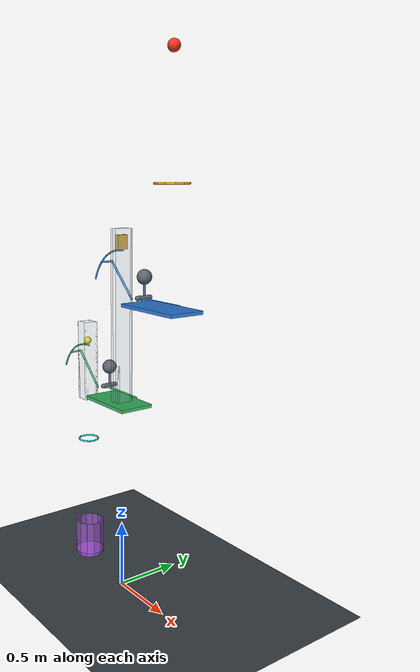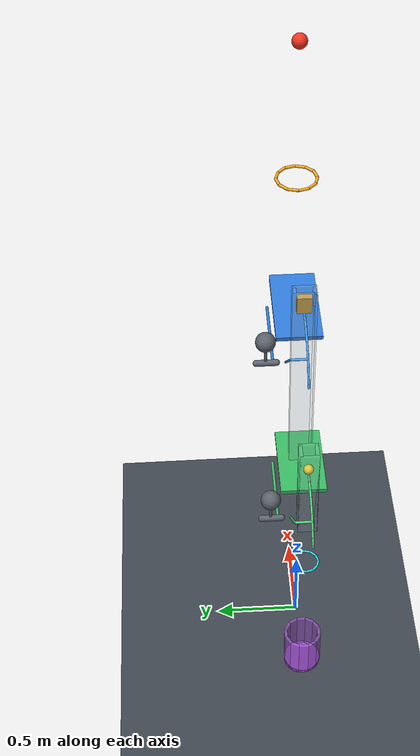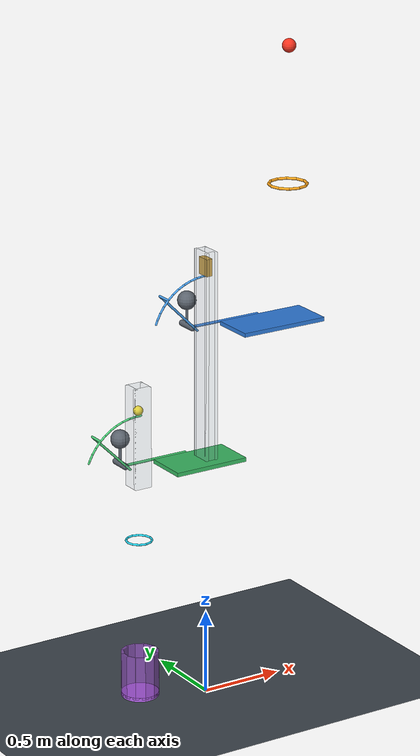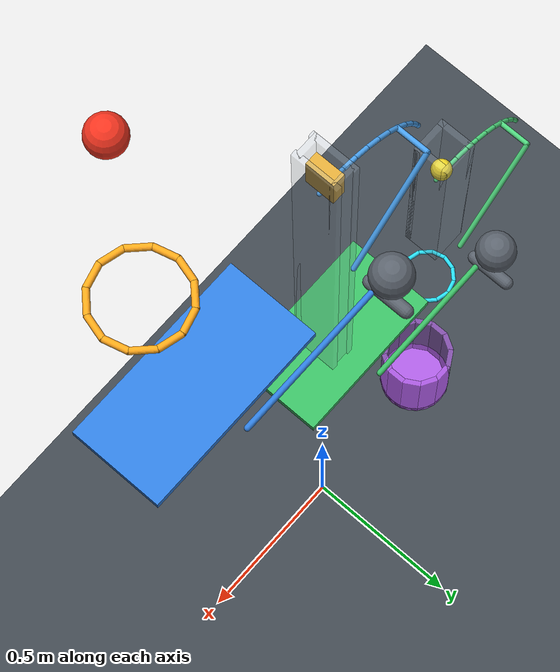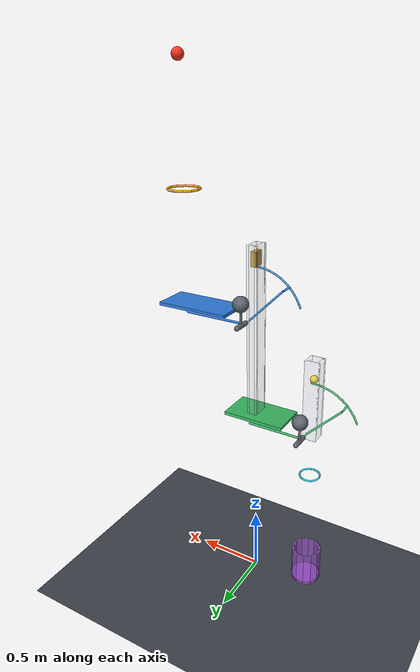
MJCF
<mujoco model="two_hoop_cam_cascade">
  <compiler angle="degree" autolimits="true"/>
  <option timestep="0.002" gravity="0 0 -9.81" integrator="implicitfast" solver="Newton" iterations="100" tolerance="1e-10"/>
  <size njmax="2000" nconmax="400"/>
  <visual>
    <global azimuth="135" elevation="-18"/>
    <headlight ambient="0.4 0.4 0.4" diffuse="0.7 0.7 0.7" specular="0.2 0.2 0.2"/>
  </visual>

  <worldbody>
    <light name="overhead" pos="0 -2 5" dir="0 0 -1"/>
    <camera name="overview" pos="4 -7 4" xyaxes="0.868 0.496 0 -0.168 0.294 0.941"/>
    <geom name="floor" type="plane" size="5 5 0.1" contype="2" conaffinity="1" friction="0.8 0.01 0.001" rgba="0.24 0.27 0.30 1"/>

    <body name="ball1" pos="0.55 0 3.8">
      <freejoint name="ball1_free"/>
      <geom name="ball1_sphere" type="sphere" size="0.04" mass="0.075" contype="1" conaffinity="2" friction="0.35 0.005 0.0001" solref="0.01 1" solimp="0.95 0.99 0.001" rgba="0.95 0.20 0.12 1"/>
    </body>

    <body name="hoop1" pos="0.55 0 3.0">
      <geom name="hoop1_01" type="capsule" fromto="0.110000 0 0 0.095263 0.055000 0" size="0.008" contype="2" conaffinity="1" rgba="1 0.65 0.10 1"/>
      <geom name="hoop1_02" type="capsule" fromto="0.095263 0.055000 0 0.055000 0.095263 0" size="0.008" contype="2" conaffinity="1" rgba="1 0.65 0.10 1"/>
      <geom name="hoop1_03" type="capsule" fromto="0.055000 0.095263 0 0 0.110000 0" size="0.008" contype="2" conaffinity="1" rgba="1 0.65 0.10 1"/>
      <geom name="hoop1_04" type="capsule" fromto="0 0.110000 0 -0.055000 0.095263 0" size="0.008" contype="2" conaffinity="1" rgba="1 0.65 0.10 1"/>
      <geom name="hoop1_05" type="capsule" fromto="-0.055000 0.095263 0 -0.095263 0.055000 0" size="0.008" contype="2" conaffinity="1" rgba="1 0.65 0.10 1"/>
      <geom name="hoop1_06" type="capsule" fromto="-0.095263 0.055000 0 -0.110000 0 0" size="0.008" contype="2" conaffinity="1" rgba="1 0.65 0.10 1"/>
      <geom name="hoop1_07" type="capsule" fromto="-0.110000 0 0 -0.095263 -0.055000 0" size="0.008" contype="2" conaffinity="1" rgba="1 0.65 0.10 1"/>
      <geom name="hoop1_08" type="capsule" fromto="-0.095263 -0.055000 0 -0.055000 -0.095263 0" size="0.008" contype="2" conaffinity="1" rgba="1 0.65 0.10 1"/>
      <geom name="hoop1_09" type="capsule" fromto="-0.055000 -0.095263 0 0 -0.110000 0" size="0.008" contype="2" conaffinity="1" rgba="1 0.65 0.10 1"/>
      <geom name="hoop1_10" type="capsule" fromto="0 -0.110000 0 0.055000 -0.095263 0" size="0.008" contype="2" conaffinity="1" rgba="1 0.65 0.10 1"/>
      <geom name="hoop1_11" type="capsule" fromto="0.055000 -0.095263 0 0.095263 -0.055000 0" size="0.008" contype="2" conaffinity="1" rgba="1 0.65 0.10 1"/>
      <geom name="hoop1_12" type="capsule" fromto="0.095263 -0.055000 0 0.110000 0 0" size="0.008" contype="2" conaffinity="1" rgba="1 0.65 0.10 1"/>
    </body>

    <body name="flap1" pos="0 0 2.20">
      <inertial pos="0 0.20 0.15" mass="0.12" diaginertia="0.005 0.012 0.012"/>
      <joint name="flap1_hinge" type="hinge" axis="0 1 0" range="0 75" damping="0.004" frictionloss="0.008" solreflimit="0.004 1" solimplimit="0.99 0.999 0.001"/>
      <geom name="flap1_paddle" type="box" pos="0.45 0 0" size="0.27 0.13 0.012" contype="2" conaffinity="1" friction="0.6 0.005 0.0001" solref="0.008 1" rgba="0.18 0.48 0.85 1"/>
      <geom name="flap1_sidearm" type="capsule" fromto="0 0.16 0 0.45 0.16 0" size="0.008" contype="2" conaffinity="1" rgba="0.18 0.48 0.85 1"/>
      <geom name="flap1_axle" type="capsule" fromto="0 0.14 0 0 0.25 0" size="0.018" contype="2" conaffinity="1" rgba="0.35 0.38 0.42 1"/>
      <geom name="flap1_weightarm" type="capsule" fromto="0 0.20 0 0 0.20 0.15" size="0.008" contype="2" conaffinity="1" rgba="0.35 0.38 0.42 1"/>
      <geom name="flap1_counterweight" type="sphere" pos="0 0.20 0.15" size="0.055" contype="2" conaffinity="1" rgba="0.35 0.38 0.42 1"/>
      <geom name="flap1_cam_00" type="capsule" fromto="-0.018318 0 0.349520 0.018318 0 0.349520" size="0.006" contype="2" conaffinity="1" priority="1" friction="0.002 0.0001 0.00001" rgba="0.28 0.62 0.92 1"/>
      <geom name="flap1_cam_01" type="capsule" fromto="-0.018318 0 0.349520 -0.060777 0 0.344683" size="0.006" contype="2" conaffinity="1" priority="1" friction="0.002 0.0001 0.00001" rgba="0.28 0.62 0.92 1"/>
      <geom name="flap1_cam_02" type="capsule" fromto="-0.060777 0 0.344683 -0.102330 0 0.334704" size="0.006" contype="2" conaffinity="1" priority="1" friction="0.002 0.0001 0.00001" rgba="0.28 0.62 0.92 1"/>
      <geom name="flap1_cam_03" type="capsule" fromto="-0.102330 0 0.334704 -0.142358 0 0.319741" size="0.006" contype="2" conaffinity="1" priority="1" friction="0.002 0.0001 0.00001" rgba="0.28 0.62 0.92 1"/>
      <geom name="flap1_cam_04" type="capsule" fromto="-0.142358 0 0.319741 -0.180263 0 0.300008" size="0.006" contype="2" conaffinity="1" priority="1" friction="0.002 0.0001 0.00001" rgba="0.28 0.62 0.92 1"/>
      <geom name="flap1_cam_05" type="capsule" fromto="-0.180263 0 0.300008 -0.215482 0 0.275804" size="0.006" contype="2" conaffinity="1" priority="1" friction="0.002 0.0001 0.00001" rgba="0.28 0.62 0.92 1"/>
      <geom name="flap1_cam_06" type="capsule" fromto="-0.215482 0 0.275804 -0.247487 0 0.247487" size="0.006" contype="2" conaffinity="1" priority="1" friction="0.002 0.0001 0.00001" rgba="0.28 0.62 0.92 1"/>
      <geom name="flap1_cam_07" type="capsule" fromto="-0.247487 0 0.247487 -0.275804 0 0.215482" size="0.006" contype="2" conaffinity="1" priority="1" friction="0.002 0.0001 0.00001" rgba="0.28 0.62 0.92 1"/>
      <geom name="flap1_cam_08" type="capsule" fromto="-0.275804 0 0.215482 -0.300008 0 0.180263" size="0.006" contype="2" conaffinity="1" priority="1" friction="0.002 0.0001 0.00001" rgba="0.28 0.62 0.92 1"/>
      <geom name="flap1_cam_09" type="capsule" fromto="-0.300008 0 0.180263 -0.319741 0 0.142358" size="0.006" contype="2" conaffinity="1" priority="1" friction="0.002 0.0001 0.00001" rgba="0.28 0.62 0.92 1"/>
      <geom name="flap1_cam_10" type="capsule" fromto="-0.319741 0 0.142358 -0.328892 0 0.119707" size="0.006" contype="2" conaffinity="1" priority="1" friction="0.002 0.0001 0.00001" rgba="0.28 0.62 0.92 1"/>
      <geom name="flap1_cam_spoke" type="capsule" fromto="0 0.09 0 -0.247487 0.09 0.247487" size="0.007" contype="2" conaffinity="1" rgba="0.28 0.62 0.92 1"/>
      <geom name="flap1_cam_crossbar" type="capsule" fromto="-0.247487 0 0.247487 -0.247487 0.09 0.247487" size="0.007" contype="2" conaffinity="1" rgba="0.28 0.62 0.92 1"/>
    </body>

    <body name="block" pos="0 0 2.606">
      <freejoint name="block_free"/>
      <geom name="block_striker" type="box" size="0.018 0.040 0.050" mass="0.16" contype="1" conaffinity="2" friction="0.25 0.005 0.0001" solref="0.008 1" solimp="0.95 0.99 0.001" rgba="0.85 0.65 0.22 1"/>
    </body>

    <body name="block_guide" pos="0 0 2.06">
      <geom name="block_guide_left" type="box" pos="-0.029 0 0" size="0.008 0.065 0.64" contype="2" conaffinity="1" priority="2" friction="0.002 0.0001 0.00001" rgba="0.65 0.72 0.78 0.22"/>
      <geom name="block_guide_right" type="box" pos="0.029 0 0" size="0.008 0.065 0.64" contype="2" conaffinity="1" priority="2" friction="0.002 0.0001 0.00001" rgba="0.65 0.72 0.78 0.22"/>
      <geom name="block_guide_front" type="box" pos="0 -0.052 0" size="0.037 0.008 0.64" contype="2" conaffinity="1" priority="2" friction="0.002 0.0001 0.00001" rgba="0.65 0.72 0.78 0.16"/>
      <geom name="block_guide_back" type="box" pos="0 0.052 0" size="0.037 0.008 0.64" contype="2" conaffinity="1" priority="2" friction="0.002 0.0001 0.00001" rgba="0.65 0.72 0.78 0.22"/>
    </body>

    <body name="flap2" pos="-0.45 0 1.45">
      <inertial pos="0 0.20 0.15" mass="0.12" diaginertia="0.005 0.012 0.012"/>
      <joint name="flap2_hinge" type="hinge" axis="0 1 0" range="0 75" damping="0.004" frictionloss="0.008" solreflimit="0.004 1" solimplimit="0.99 0.999 0.001"/>
      <geom name="flap2_paddle" type="box" pos="0.41 0 0" size="0.23 0.13 0.012" contype="2" conaffinity="1" friction="0.6 0.005 0.0001" solref="0.008 1" rgba="0.22 0.72 0.38 1"/>
      <geom name="flap2_sidearm" type="capsule" fromto="0 0.16 0 0.41 0.16 0" size="0.008" contype="2" conaffinity="1" rgba="0.22 0.72 0.38 1"/>
      <geom name="flap2_axle" type="capsule" fromto="0 0.14 0 0 0.25 0" size="0.018" contype="2" conaffinity="1" rgba="0.35 0.38 0.42 1"/>
      <geom name="flap2_weightarm" type="capsule" fromto="0 0.20 0 0 0.20 0.15" size="0.008" contype="2" conaffinity="1" rgba="0.35 0.38 0.42 1"/>
      <geom name="flap2_counterweight" type="sphere" pos="0 0.20 0.15" size="0.055" contype="2" conaffinity="1" rgba="0.35 0.38 0.42 1"/>
      <geom name="flap2_cam_00" type="capsule" fromto="-0.018318 0 0.349520 0.018318 0 0.349520" size="0.006" contype="2" conaffinity="1" priority="1" friction="0.002 0.0001 0.00001" rgba="0.30 0.82 0.48 1"/>
      <geom name="flap2_cam_01" type="capsule" fromto="-0.018318 0 0.349520 -0.060777 0 0.344683" size="0.006" contype="2" conaffinity="1" priority="1" friction="0.002 0.0001 0.00001" rgba="0.30 0.82 0.48 1"/>
      <geom name="flap2_cam_02" type="capsule" fromto="-0.060777 0 0.344683 -0.102330 0 0.334704" size="0.006" contype="2" conaffinity="1" priority="1" friction="0.002 0.0001 0.00001" rgba="0.30 0.82 0.48 1"/>
      <geom name="flap2_cam_03" type="capsule" fromto="-0.102330 0 0.334704 -0.142358 0 0.319741" size="0.006" contype="2" conaffinity="1" priority="1" friction="0.002 0.0001 0.00001" rgba="0.30 0.82 0.48 1"/>
      <geom name="flap2_cam_04" type="capsule" fromto="-0.142358 0 0.319741 -0.180263 0 0.300008" size="0.006" contype="2" conaffinity="1" priority="1" friction="0.002 0.0001 0.00001" rgba="0.30 0.82 0.48 1"/>
      <geom name="flap2_cam_05" type="capsule" fromto="-0.180263 0 0.300008 -0.215482 0 0.275804" size="0.006" contype="2" conaffinity="1" priority="1" friction="0.002 0.0001 0.00001" rgba="0.30 0.82 0.48 1"/>
      <geom name="flap2_cam_06" type="capsule" fromto="-0.215482 0 0.275804 -0.247487 0 0.247487" size="0.006" contype="2" conaffinity="1" priority="1" friction="0.002 0.0001 0.00001" rgba="0.30 0.82 0.48 1"/>
      <geom name="flap2_cam_07" type="capsule" fromto="-0.247487 0 0.247487 -0.275804 0 0.215482" size="0.006" contype="2" conaffinity="1" priority="1" friction="0.002 0.0001 0.00001" rgba="0.30 0.82 0.48 1"/>
      <geom name="flap2_cam_08" type="capsule" fromto="-0.275804 0 0.215482 -0.300008 0 0.180263" size="0.006" contype="2" conaffinity="1" priority="1" friction="0.002 0.0001 0.00001" rgba="0.30 0.82 0.48 1"/>
      <geom name="flap2_cam_09" type="capsule" fromto="-0.300008 0 0.180263 -0.319741 0 0.142358" size="0.006" contype="2" conaffinity="1" priority="1" friction="0.002 0.0001 0.00001" rgba="0.30 0.82 0.48 1"/>
      <geom name="flap2_cam_10" type="capsule" fromto="-0.319741 0 0.142358 -0.324514 0 0.131112" size="0.006" contype="2" conaffinity="1" priority="1" friction="0.002 0.0001 0.00001" rgba="0.30 0.82 0.48 1"/>
      <geom name="flap2_cam_spoke" type="capsule" fromto="0 0.09 0 -0.247487 0.09 0.247487" size="0.007" contype="2" conaffinity="1" rgba="0.30 0.82 0.48 1"/>
      <geom name="flap2_cam_crossbar" type="capsule" fromto="-0.247487 0 0.247487 -0.247487 0.09 0.247487" size="0.007" contype="2" conaffinity="1" rgba="0.30 0.82 0.48 1"/>
    </body>

    <body name="ball2" pos="-0.45 0 1.83352">
      <freejoint name="ball2_free"/>
      <geom name="ball2_sphere" type="sphere" size="0.028" mass="0.045" contype="1" conaffinity="2" friction="0.6 0.01 0.001" solref="0.012 1" solimp="0.95 0.99 0.001" rgba="0.95 0.85 0.15 1"/>
    </body>

    <body name="ball2_guide" pos="-0.45 0 1.68">
      <geom name="ball2_guide_left" type="box" pos="-0.044 0 0" size="0.009 0.053 0.30" contype="2" conaffinity="1" priority="2" friction="0.002 0.0001 0.00001" rgba="0.65 0.72 0.78 0.20"/>
      <geom name="ball2_guide_right" type="box" pos="0.044 0 0" size="0.009 0.053 0.30" contype="2" conaffinity="1" priority="2" friction="0.002 0.0001 0.00001" rgba="0.65 0.72 0.78 0.20"/>
      <geom name="ball2_guide_front" type="box" pos="0 -0.044 0" size="0.053 0.009 0.30" contype="2" conaffinity="1" priority="2" friction="0.002 0.0001 0.00001" rgba="0.65 0.72 0.78 0.14"/>
      <geom name="ball2_guide_back" type="box" pos="0 0.044 0" size="0.053 0.009 0.30" contype="2" conaffinity="1" priority="2" friction="0.002 0.0001 0.00001" rgba="0.65 0.72 0.78 0.20"/>
    </body>

    <body name="hoop2" pos="-0.45 0 1.05">
      <geom name="hoop2_01" type="capsule" fromto="0.075000 0 0 0.064952 0.037500 0" size="0.006" contype="2" conaffinity="1" rgba="0.15 0.85 0.95 1"/>
      <geom name="hoop2_02" type="capsule" fromto="0.064952 0.037500 0 0.037500 0.064952 0" size="0.006" contype="2" conaffinity="1" rgba="0.15 0.85 0.95 1"/>
      <geom name="hoop2_03" type="capsule" fromto="0.037500 0.064952 0 0 0.075000 0" size="0.006" contype="2" conaffinity="1" rgba="0.15 0.85 0.95 1"/>
      <geom name="hoop2_04" type="capsule" fromto="0 0.075000 0 -0.037500 0.064952 0" size="0.006" contype="2" conaffinity="1" rgba="0.15 0.85 0.95 1"/>
      <geom name="hoop2_05" type="capsule" fromto="-0.037500 0.064952 0 -0.064952 0.037500 0" size="0.006" contype="2" conaffinity="1" rgba="0.15 0.85 0.95 1"/>
      <geom name="hoop2_06" type="capsule" fromto="-0.064952 0.037500 0 -0.075000 0 0" size="0.006" contype="2" conaffinity="1" rgba="0.15 0.85 0.95 1"/>
      <geom name="hoop2_07" type="capsule" fromto="-0.075000 0 0 -0.064952 -0.037500 0" size="0.006" contype="2" conaffinity="1" rgba="0.15 0.85 0.95 1"/>
      <geom name="hoop2_08" type="capsule" fromto="-0.064952 -0.037500 0 -0.037500 -0.064952 0" size="0.006" contype="2" conaffinity="1" rgba="0.15 0.85 0.95 1"/>
      <geom name="hoop2_09" type="capsule" fromto="-0.037500 -0.064952 0 0 -0.075000 0" size="0.006" contype="2" conaffinity="1" rgba="0.15 0.85 0.95 1"/>
      <geom name="hoop2_10" type="capsule" fromto="0 -0.075000 0 0.037500 -0.064952 0" size="0.006" contype="2" conaffinity="1" rgba="0.15 0.85 0.95 1"/>
      <geom name="hoop2_11" type="capsule" fromto="0.037500 -0.064952 0 0.064952 -0.037500 0" size="0.006" contype="2" conaffinity="1" rgba="0.15 0.85 0.95 1"/>
      <geom name="hoop2_12" type="capsule" fromto="0.064952 -0.037500 0 0.075000 0 0" size="0.006" contype="2" conaffinity="1" rgba="0.15 0.85 0.95 1"/>
    </body>

    <body name="cup" pos="-0.45 0 0.10">
      <geom name="cup_bottom" type="cylinder" size="0.109 0.012" contype="2" conaffinity="1" friction="0.8 0.02 0.002" solref="0.015 1" solimp="0.95 0.99 0.001" rgba="0.65 0.35 0.85 1"/>
      <geom name="cup_wall_01" type="box" pos="0.100000 0 0.13" euler="0 0 0" size="0.008 0.028 0.13" contype="2" conaffinity="1" friction="0.8 0.02 0.002" solref="0.015 1" rgba="0.65 0.35 0.85 0.65"/>
      <geom name="cup_wall_02" type="box" pos="0.086603 0.050000 0.13" euler="0 0 30" size="0.008 0.028 0.13" contype="2" conaffinity="1" friction="0.8 0.02 0.002" solref="0.015 1" rgba="0.65 0.35 0.85 0.65"/>
      <geom name="cup_wall_03" type="box" pos="0.050000 0.086603 0.13" euler="0 0 60" size="0.008 0.028 0.13" contype="2" conaffinity="1" friction="0.8 0.02 0.002" solref="0.015 1" rgba="0.65 0.35 0.85 0.65"/>
      <geom name="cup_wall_04" type="box" pos="0 0.100000 0.13" euler="0 0 90" size="0.008 0.028 0.13" contype="2" conaffinity="1" friction="0.8 0.02 0.002" solref="0.015 1" rgba="0.65 0.35 0.85 0.65"/>
      <geom name="cup_wall_05" type="box" pos="-0.050000 0.086603 0.13" euler="0 0 120" size="0.008 0.028 0.13" contype="2" conaffinity="1" friction="0.8 0.02 0.002" solref="0.015 1" rgba="0.65 0.35 0.85 0.65"/>
      <geom name="cup_wall_06" type="box" pos="-0.086603 0.050000 0.13" euler="0 0 150" size="0.008 0.028 0.13" contype="2" conaffinity="1" friction="0.8 0.02 0.002" solref="0.015 1" rgba="0.65 0.35 0.85 0.65"/>
      <geom name="cup_wall_07" type="box" pos="-0.100000 0 0.13" euler="0 0 180" size="0.008 0.028 0.13" contype="2" conaffinity="1" friction="0.8 0.02 0.002" solref="0.015 1" rgba="0.65 0.35 0.85 0.65"/>
      <geom name="cup_wall_08" type="box" pos="-0.086603 -0.050000 0.13" euler="0 0 210" size="0.008 0.028 0.13" contype="2" conaffinity="1" friction="0.8 0.02 0.002" solref="0.015 1" rgba="0.65 0.35 0.85 0.65"/>
      <geom name="cup_wall_09" type="box" pos="-0.050000 -0.086603 0.13" euler="0 0 240" size="0.008 0.028 0.13" contype="2" conaffinity="1" friction="0.8 0.02 0.002" solref="0.015 1" rgba="0.65 0.35 0.85 0.65"/>
      <geom name="cup_wall_10" type="box" pos="0 -0.100000 0.13" euler="0 0 270" size="0.008 0.028 0.13" contype="2" conaffinity="1" friction="0.8 0.02 0.002" solref="0.015 1" rgba="0.65 0.35 0.85 0.65"/>
      <geom name="cup_wall_11" type="box" pos="0.050000 -0.086603 0.13" euler="0 0 300" size="0.008 0.028 0.13" contype="2" conaffinity="1" friction="0.8 0.02 0.002" solref="0.015 1" rgba="0.65 0.35 0.85 0.65"/>
      <geom name="cup_wall_12" type="box" pos="0.086603 -0.050000 0.13" euler="0 0 330" size="0.008 0.028 0.13" contype="2" conaffinity="1" friction="0.8 0.02 0.002" solref="0.015 1" rgba="0.65 0.35 0.85 0.65"/>
    </body>
  </worldbody>

  <keyframe>
    <key name="start" qpos="0.55 0 3.8 1 0 0 0 0 0 0 2.606 1 0 0 0 0 -0.45 0 1.83352 1 0 0 0"/>
  </keyframe>
</mujoco>
